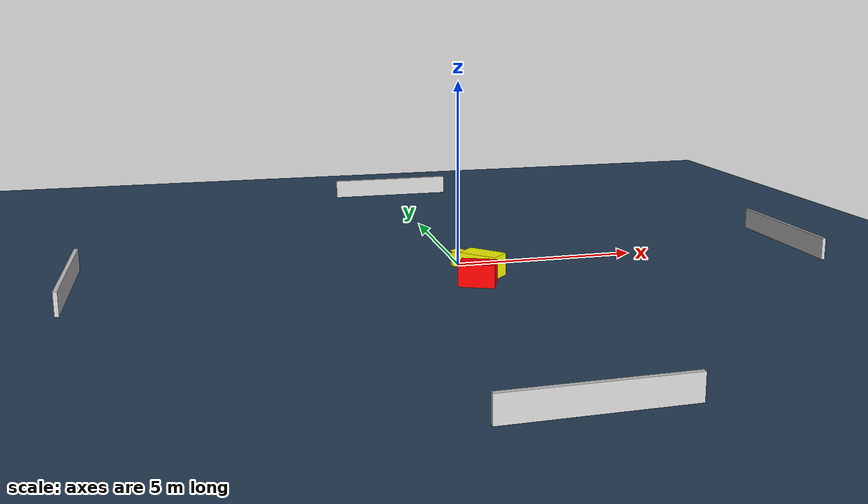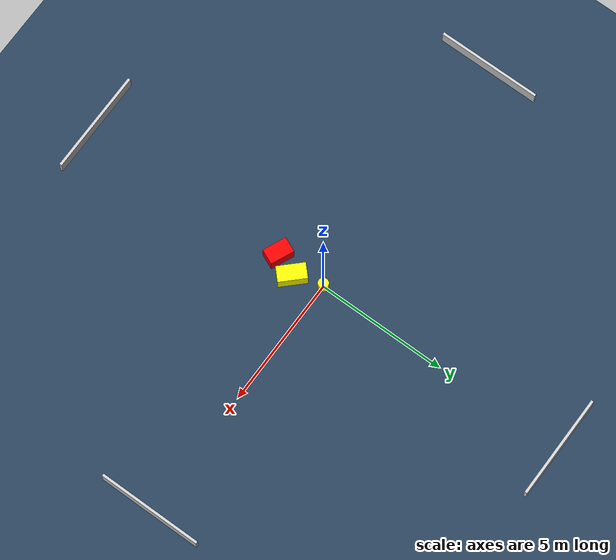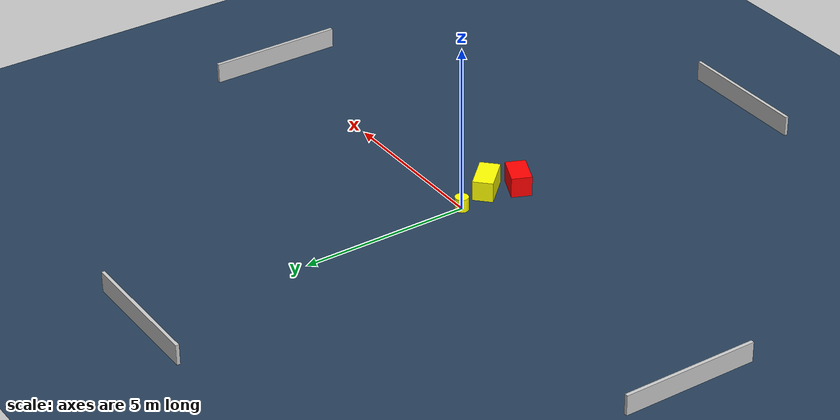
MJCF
<?xml version="1.0" ?>
<mujoco model="generated_environment">
  <option timestep="0.01" integrator="RK4" cone="elliptic"/>
  <default>
    <geom density="1"/>
  </default>
  <asset>
    <texture builtin="gradient" height="3072" name="skybox" rgb1="0.3 0.5 0.7" rgb2="0 0 0" type="skybox" width="512"/>
    <texture builtin="checker" height="300" name="groundplane" rgb1="0.2 0.3 0.4" rgb2="0.1 0.2 0.3" type="2d" width="300"/>
    <material name="groundplane" reflectance="0.2" texrepeat="5 5" texture="groundplane"/>
  </asset>
  <worldbody>
    <light dir="0 0 -1" directional="true" pos="0 0 1.5"/>
    <geom condim="3" friction="0.5 0.005 0.001" material="groundplane" name="floor" pos="0 0 0" size="0 0 0.05" type="plane"/>
    <body name="walls">
      <geom name="wall_1" condim="4" pos="-10.0 0.0 0.3" rgba="0.800000011920929 0.800000011920929 0.800000011920929 1.0" size="0.05 2.0 0.3" type="box"/>
      <geom name="wall_2" condim="4" pos="10.0 0.0 0.3" rgba="0.800000011920929 0.800000011920929 0.800000011920929 1.0" size="0.05 2.0 0.3" type="box"/>
      <geom name="wall_3" condim="4" pos="0.0 -10.0 0.3" rgba="0.800000011920929 0.800000011920929 0.800000011920929 1.0" size="2.0 0.05 0.3" type="box"/>
      <geom name="wall_4" condim="4" pos="0.0 10.0 0.3" rgba="0.800000011920929 0.800000011920929 0.800000011920929 1.0" size="2.0 0.05 0.3" type="box"/>
    </body>
    <body name="robot">
      <joint name="joint_x" type="slide" pos="0 0 0" axis="1 0 0"/>
      <joint name="joint_y" type="slide" pos="0 0 0" axis="0 1 0"/>
      <geom name="robot" type="cylinder" pos="0.0 0.0 0.2" size="0.2 0.2 0.0" mass="5.0" friction="1.0 0.005 0.0001" condim="4" rgba="1.0 1.0 0.0 1.0"/>
    </body>
    <body name="obstacle_1_movable">
      <geom name="obstacle_1_movable" condim="4" pos="0.38093005507000827 -1.0892866762137765 0.3" euler="0 0 314.0796164087656" friction="0.0 0.005 0.001" rgba="1.0 1.0 0.0 1.0" size="0.5368684395233048 0.29697957578318107 0.3" type="box" mass="0.1"/>
      <joint type="free"/>
    </body>
    <body name="obstacle_2_static">
      <geom name="obstacle_2_static" condim="4" pos="0.021134931540358132 -1.9286752236911202 0.3" euler="0 0 66.30822031315874" friction="0.0 0.005 0.001" rgba="1.0 0.0 0.0 1.0" size="0.2980873551417164 0.4641931507629734 0.3" type="box"/>
    </body>
  </worldbody>
  <actuator>
    <motor name="actuator_x" joint="joint_x" gear="1" ctrlrange="-1 1"/>
    <motor name="actuator_y" joint="joint_y" gear="1" ctrlrange="-1 1"/>
  </actuator>
</mujoco>
